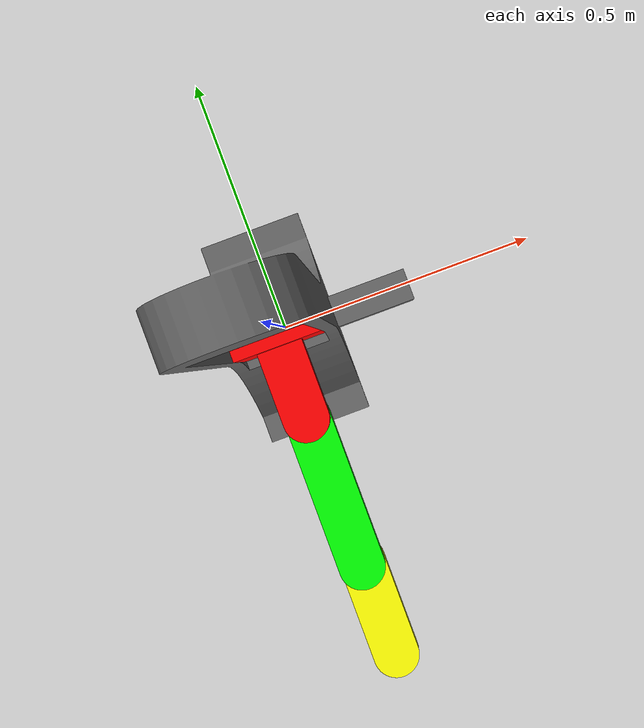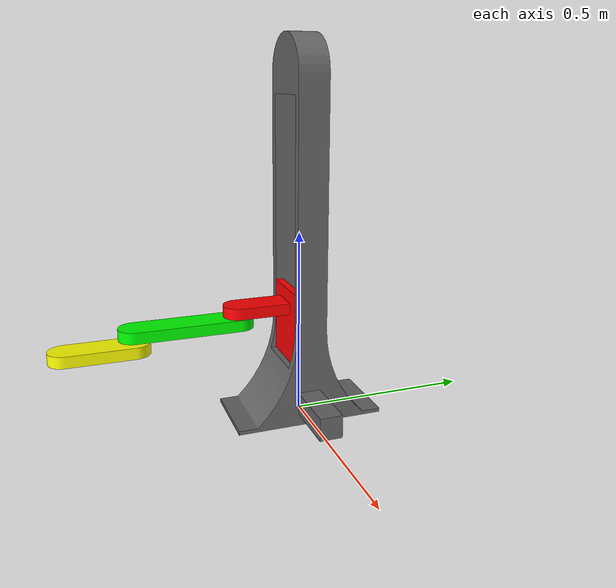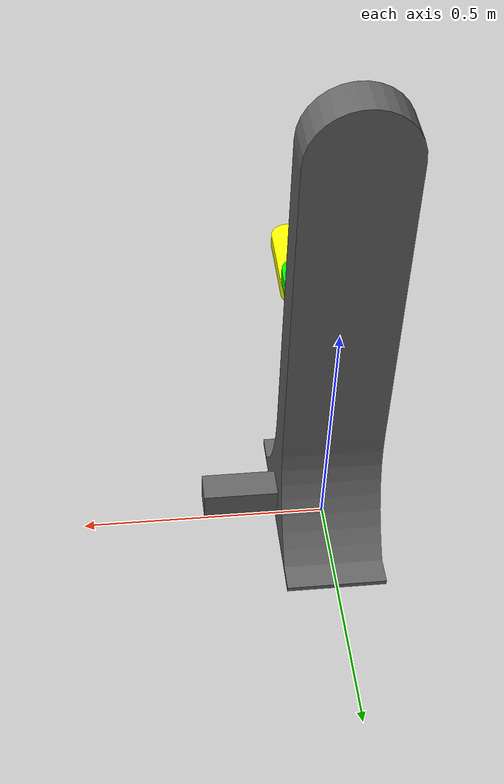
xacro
<?xml version="1.0" ?>

<robot xmlns:xacro="http://ros.org/wiki/xacro" name="igus_scara_4dof" >

<!--Define constant-->
<xacro:property name="PI" value="3.14159"/>
<xacro:property name="d2r" value="0.0174533"/> <!--degree 2 radius-->
<material name="gray">
  <color rgba="0.4 0.4 0.4 1"/>
</material>
<material name="red">
  <color rgba="1 0 0 1"/>
</material>
<material name="green">
  <color rgba="0 1 0 1"/>
</material>
<material name="blue">
  <color rgba="0 0 1 1"/> <!-- Long stick is represented by a long-thin box -->
</material>
<material name="yellow">
  <color rgba="1 1 0 1"/>
</material>

<!-- ======== base ======== -->
  <link name="base_link">
    <visual>
      <origin xyz="0 0 0" rpy="0 0 0"/>
      <geometry>
        <mesh filename="package://tpm_description/meshes/igus_scara_4dof/0_base.stl" scale="0.001 0.001 0.001"/>
      </geometry>
      <material name="gray"/>
    </visual>
  </link>

  <link name="link1">
    <visual>
      <origin xyz="0 0 0" rpy="0 0 0"/>
      <geometry>
        <mesh filename="package://tpm_description/meshes/igus_scara_4dof/1_link1.stl" scale="0.001 0.001 0.001"/>
      </geometry>
      <material name="red"/>
    </visual>
  </link>

  <link name="link2">
    <visual>
      <origin xyz="0 0 0" rpy="0 0 0"/>
      <geometry>
        <mesh filename="package://tpm_description/meshes/igus_scara_4dof/2_link2.stl" scale="0.001 0.001 0.001"/>
      </geometry>
      <material name="green"/>
    </visual>
  </link>

  <link name="link3">
    <visual>
      <origin xyz="0 0 0" rpy="0 0 0"/>
      <geometry>
        <mesh filename="package://tpm_description/meshes/igus_scara_4dof/3_link3.stl" scale="0.001 0.001 0.001"/>
      </geometry>
      <material name="yellow"/>
    </visual>
  </link>

  <joint name="joint1" type="prismatic">
    <axis xyz="0 0 1" />
    <origin xyz="0 0 0.32" rpy="0 0 0"/>
    <parent link="base_link"/>
    <child link="link1"/>
    <limit effort="30" velocity="1" lower="0" upper="0.5"/>
  </joint>

  <joint name="joint2" type="revolute">
    <axis xyz="0 0 1"/>
    <origin xyz="0 -0.17 -0.031" rpy="0 0 0"/>
    <parent link="link1"/>
    <child link="link2"/>
		<limit effort="100.0" lower="-3.14" upper="3.14" velocity="0.5"/>
  </joint>

  <joint name="joint3" type="revolute">
    <axis xyz="0 0 1"/>
    <origin xyz="0 -0.27 -0.039" rpy="0 0 0"/>
    <parent link="link2"/>
    <child link="link3"/>
		<limit effort="100.0" lower="-3.14" upper="3.14" velocity="0.5"/>
  </joint>
</robot>
